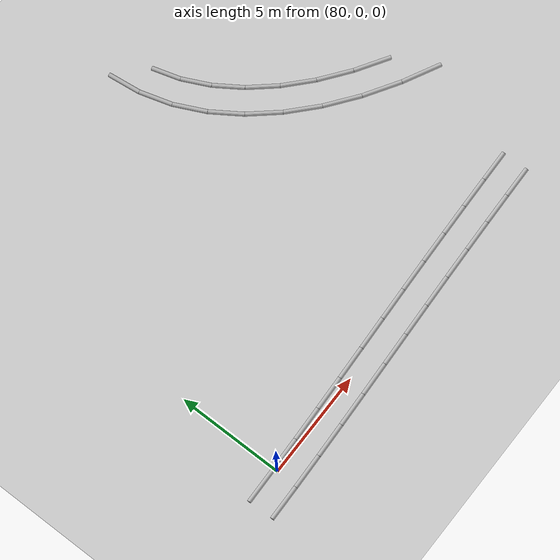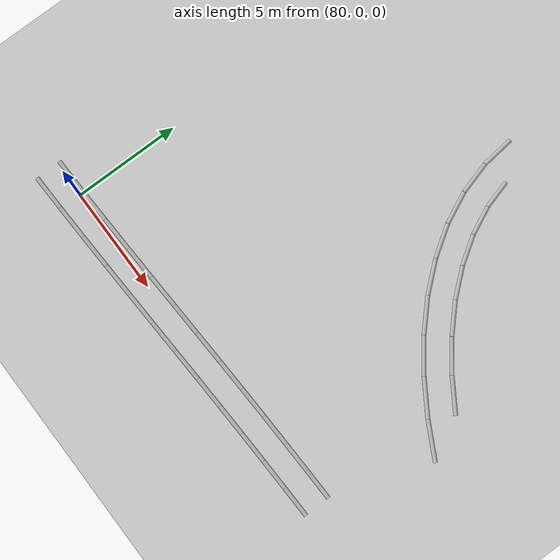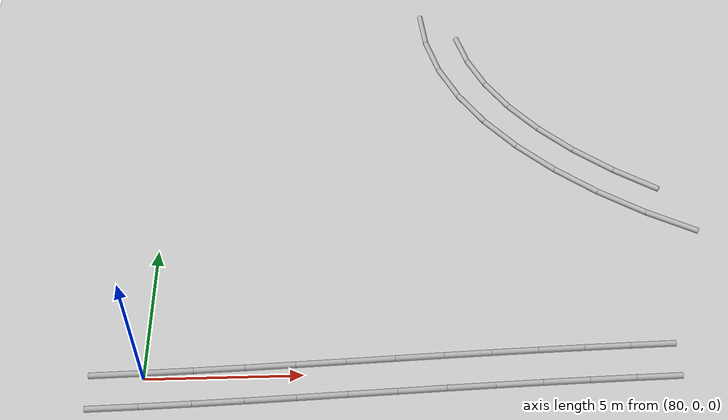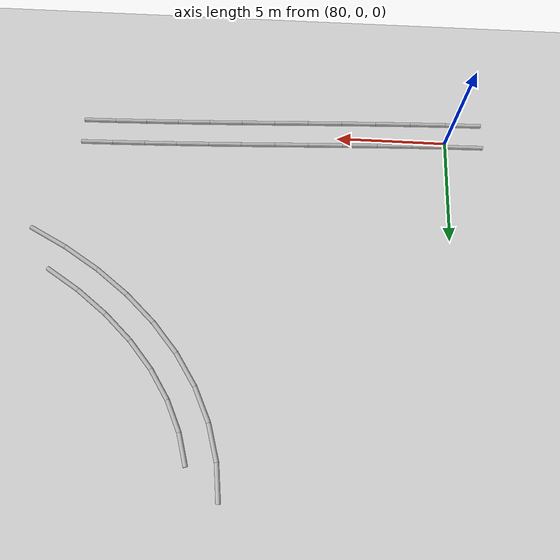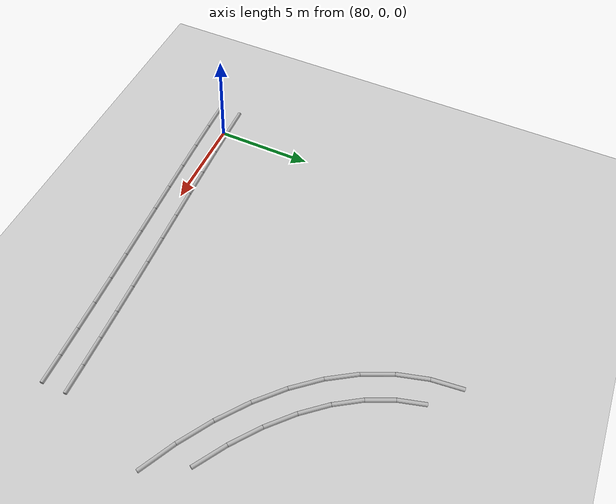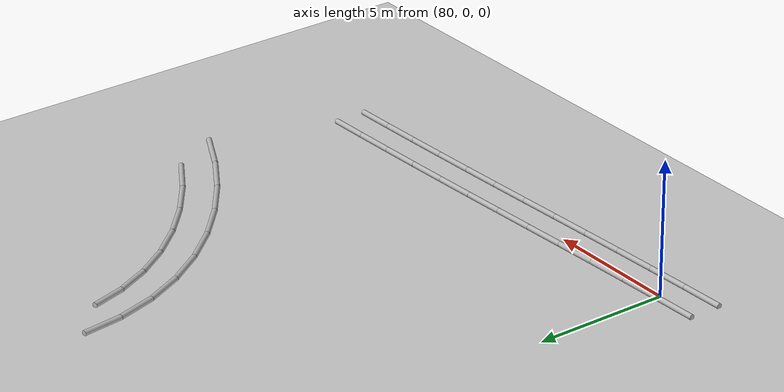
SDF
<sdf version="1.6">
 <world name="default">
  <model name="ground_plane">
   <static>true</static>
   <link name="link">
    <collision name="collision">
     <geometry><plane><normal>0 0 1</normal><size>5000 5000</size></plane></geometry>
     <surface>
      <friction>
       <ode><mu>50</mu></ode>
       <bullet><friction>1</friction><rolling_friction>0.1</rolling_friction></bullet>
      </friction>
     </surface>
    </collision>
    <visual name="visual">
     <geometry><plane><normal>0 0 1</normal><size>5000 5000</size></plane></geometry>
     <material>
      <ambient>0.8 0.8 0.8 1</ambient>
      <diffuse>0.8 0.8 0.8 1</diffuse>
      <specular>0.8 0.8 0.8 1</specular>
     </material>
    </visual>
    <inertial>
     <mass>1</mass>
     <inertia><ixx>1</ixx><ixy>0</ixy><ixz>0</ixz><iyy>1</iyy><iyz>0</iyz><izz>1</izz></inertia>
    </inertial>
   </link>
  </model>
  <model name="line_model">
   <static>true</static>
   <link name="cylinder_(78.28234827015892, -1.0534792192528566)_(79.93636426591131, -1.0135944991903156)">
    <pose>79.10935626803511 -1.0335368592215861 0.05 0 1.5707963267948966 0.02410919371888497</pose>
    <visual name="visual">
     <geometry><cylinder><radius>0.1</radius><length>1.654496813263547</length></cylinder></geometry>
    </visual>
    <collision name="collision">
     <geometry><cylinder><radius>0.1</radius><length>1.654496813263547</length></cylinder></geometry>
    </collision>
   </link>
   <link name="cylinder_(79.93636426591131, -1.0135944991903156)_(81.57447034919313, -0.9614518591887812)">
    <pose>80.75541730755222 -0.9875231791895485 0.05 0 1.5707963267948966 0.031820308005831535</pose>
    <visual name="visual">
     <geometry><cylinder><radius>0.1</radius><length>1.6389357507209534</length></cylinder></geometry>
    </visual>
    <collision name="collision">
     <geometry><cylinder><radius>0.1</radius><length>1.6389357507209534</length></cylinder></geometry>
    </collision>
   </link>
   <link name="cylinder_(81.57447034919313, -0.9614518591887812)_(83.19522868099027, -0.9000821338789796)">
    <pose>82.3848495150917 -0.9307669965338804 0.05 0 1.5707963267948966 0.037846741123918254</pose>
    <visual name="visual">
     <geometry><cylinder><radius>0.1</radius><length>1.6219197924911175</length></cylinder></geometry>
    </visual>
    <collision name="collision">
     <geometry><cylinder><radius>0.1</radius><length>1.6219197924911175</length></cylinder></geometry>
    </collision>
   </link>
   <link name="cylinder_(83.19522868099027, -0.9000821338789796)_(84.79719540522802, -0.832511633638654)">
    <pose>83.99621204310915 -0.8662968837588167 0.05 0 1.5707963267948966 0.04215472752480525</pose>
    <visual name="visual">
     <geometry><cylinder><radius>0.1</radius><length>1.6033911431923813</length></cylinder></geometry>
    </visual>
    <collision name="collision">
     <geometry><cylinder><radius>0.1</radius><length>1.6033911431923813</length></cylinder></geometry>
    </collision>
   </link>
   <link name="cylinder_(84.79719540522802, -0.832511633638654)_(86.37891967201405, -0.7617619397766893)">
    <pose>85.58805753862103 -0.7971367867076716 0.05 0 1.5707963267948966 0.044699678905558926</pose>
    <visual name="visual">
     <geometry><cylinder><radius>0.1</radius><length>1.583305774423043</length></cylinder></geometry>
    </visual>
    <collision name="collision">
     <geometry><cylinder><radius>0.1</radius><length>1.583305774423043</length></cylinder></geometry>
    </collision>
   </link>
   <link name="cylinder_(86.37891967201405, -0.7617619397766893)_(87.93894262275901, -0.6908495311971052)">
    <pose>87.15893114738654 -0.7263057354868973 0.05 0 1.5707963267948966 0.04542473437777758</pose>
    <visual name="visual">
     <geometry><cylinder><radius>0.1</radius><length>1.5616338164056216</length></cylinder></geometry>
    </visual>
    <collision name="collision">
     <geometry><cylinder><radius>0.1</radius><length>1.5616338164056216</length></cylinder></geometry>
    </collision>
   </link>
   <link name="cylinder_(87.93894262275901, -0.6908495311971052)_(89.47579632394103, -0.6227851966942298)">
    <pose>88.70736947335001 -0.6568173639456676 0.05 0 1.5707963267948966 0.04425918060360364</pose>
    <visual name="visual">
     <geometry><cylinder><radius>0.1</radius><length>1.538360182944217</length></cylinder></geometry>
    </visual>
    <collision name="collision">
     <geometry><cylinder><radius>0.1</radius><length>1.538360182944217</length></cylinder></geometry>
    </collision>
   </link>
   <link name="cylinder_(89.47579632394103, -0.6227851966942298)_(90.98851884593037, -0.5604276135097989)">
    <pose>90.23215758493569 -0.5916064051020143 0.05 0 1.5707963267948966 0.041198764248002354</pose>
    <visual name="visual">
     <geometry><cylinder><radius>0.1</radius><length>1.5140072313943584</length></cylinder></geometry>
    </visual>
    <collision name="collision">
     <geometry><cylinder><radius>0.1</radius><length>1.5140072313943584</length></cylinder></geometry>
    </collision>
   </link>
   <link name="cylinder_(90.98851884593037, -0.5604276135097989)_(92.48041448687374, -0.5048527057496504)">
    <pose>91.73446666640206 -0.5326401596297246 0.05 0 1.5707963267948966 0.03723398701888854</pose>
    <visual name="visual">
     <geometry><cylinder><radius>0.1</radius><length>1.4929303981895388</length></cylinder></geometry>
    </visual>
    <collision name="collision">
     <geometry><cylinder><radius>0.1</radius><length>1.4929303981895388</length></cylinder></geometry>
    </collision>
   </link>
   <link name="cylinder_(92.48041448687374, -0.5048527057496504)_(93.95659136947582, -0.4559489454234866)">
    <pose>93.21850292817479 -0.4804008255865685 0.05 0 1.5707963267948966 0.0331165471547415</pose>
    <visual name="visual">
     <geometry><cylinder><radius>0.1</radius><length>1.4769867184585044</length></cylinder></geometry>
    </visual>
    <collision name="collision">
     <geometry><cylinder><radius>0.1</radius><length>1.4769867184585044</length></cylinder></geometry>
    </collision>
   </link>
   <link name="cylinder_(93.95659136947582, -0.4559489454234866)_(95.42213786742384, -0.4135835402188134)">
    <pose>94.68936461844983 -0.43476624282114995 0.05 0 1.5707963267948966 0.028899533599168886</pose>
    <visual name="visual">
     <geometry><cylinder><radius>0.1</radius><length>1.4661587107833445</length></cylinder></geometry>
    </visual>
    <collision name="collision">
     <geometry><cylinder><radius>0.1</radius><length>1.4661587107833445</length></cylinder></geometry>
    </collision>
   </link>
   <link name="cylinder_(95.42213786742384, -0.4135835402188134)_(96.88214407625512, -0.37762405332056653)">
    <pose>96.15214097183949 -0.39560379676968993 0.05 0 1.5707963267948966 0.024624702322558624</pose>
    <visual name="visual">
     <geometry><cylinder><radius>0.1</radius><length>1.4604489770354372</length></cylinder></geometry>
    </visual>
    <collision name="collision">
     <geometry><cylinder><radius>0.1</radius><length>1.4604489770354372</length></cylinder></geometry>
    </collision>
   </link>
   <link name="cylinder_(97.30680030457754, 7.2666266332350276)_(95.8423356423353, 8.187546430091905)">
    <pose>96.57456797345642 7.727086531663466 0.05 0 1.5707963267948966 2.580233897279629</pose>
    <visual name="visual">
     <geometry><cylinder><radius>0.1</radius><length>1.7299566524046714</length></cylinder></geometry>
    </visual>
    <collision name="collision">
     <geometry><cylinder><radius>0.1</radius><length>1.7299566524046714</length></cylinder></geometry>
    </collision>
   </link>
   <link name="cylinder_(95.8423356423353, 8.187546430091905)_(94.51741767758332, 9.194360811782985)">
    <pose>95.17987665995932 8.690953620937446 0.05 0 1.5707963267948966 2.491781183032167</pose>
    <visual name="visual">
     <geometry><cylinder><radius>0.1</radius><length>1.66405613261768</length></cylinder></geometry>
    </visual>
    <collision name="collision">
     <geometry><cylinder><radius>0.1</radius><length>1.66405613261768</length></cylinder></geometry>
    </collision>
   </link>
   <link name="cylinder_(94.51741767758332, 9.194360811782985)_(93.35001215523648, 10.27686705468125)">
    <pose>93.93371491640991 9.735613933232118 0.05 0 1.5707963267948966 2.3939110883942476</pose>
    <visual name="visual">
     <geometry><cylinder><radius>0.1</radius><length>1.5920601180607525</length></cylinder></geometry>
    </visual>
    <collision name="collision">
     <geometry><cylinder><radius>0.1</radius><length>1.5920601180607525</length></cylinder></geometry>
    </collision>
   </link>
   <link name="cylinder_(93.35001215523648, 10.27686705468125)_(92.35736868801402, 11.424447684023615)">
    <pose>92.85369042162526 10.850657369352433 0.05 0 1.5707963267948966 2.2839275960705625</pose>
    <visual name="visual">
     <geometry><cylinder><radius>0.1</radius><length>1.5173273720134535</length></cylinder></geometry>
    </visual>
    <collision name="collision">
     <geometry><cylinder><radius>0.1</radius><length>1.5173273720134535</length></cylinder></geometry>
    </collision>
   </link>
   <link name="cylinder_(92.35736868801402, 11.424447684023615)_(91.55556421833369, 12.626362748936375)">
    <pose>91.95646645317385 12.025405216479996 0.05 0 1.5707963267948966 2.1591028603740914</pose>
    <visual name="visual">
     <geometry><cylinder><radius>0.1</radius><length>1.4448149469269773</length></cylinder></geometry>
    </visual>
    <collision name="collision">
     <geometry><cylinder><radius>0.1</radius><length>1.4448149469269773</length></cylinder></geometry>
    </collision>
   </link>
   <link name="cylinder_(91.55556421833369, 12.626362748936375)_(90.95905312047474, 13.872522750836165)">
    <pose>91.25730866940421 13.24944274988627 0.05 0 1.5707963267948966 2.017242423860494</pose>
    <visual name="visual">
     <geometry><cylinder><radius>0.1</radius><length>1.3815716558339548</length></cylinder></geometry>
    </visual>
    <collision name="collision">
     <geometry><cylinder><radius>0.1</radius><length>1.3815716558339548</length></cylinder></geometry>
    </collision>
   </link>
   <link name="cylinder_(90.95905312047474, 13.872522750836165)_(90.58067326967499, 15.154883601614406)">
    <pose>90.76986319507486 14.513703176225285 0.05 0 1.5707963267948966 1.857719504755686</pose>
    <visual name="visual">
     <geometry><cylinder><radius>0.1</radius><length>1.3370193203914196</length></cylinder></geometry>
    </visual>
    <collision name="collision">
     <geometry><cylinder><radius>0.1</radius><length>1.3370193203914196</length></cylinder></geometry>
    </collision>
   </link>
   <link name="cylinder_(78.25870350308121, 0.14628781021154805)_(79.90246962428088, 0.18592671915838235)">
    <pose>79.08058656368104 0.1661072646849652 0.05 0 1.5707963267948966 0.02411001634159611</pose>
    <visual name="visual">
     <geometry><cylinder><radius>0.1</radius><length>1.6442439917196965</length></cylinder></geometry>
    </visual>
    <collision name="collision">
     <geometry><cylinder><radius>0.1</radius><length>1.6442439917196965</length></cylinder></geometry>
    </collision>
   </link>
   <link name="cylinder_(79.90246962428088, 0.18592671915838235)_(81.53233257595183, 0.23780808263628642)">
    <pose>80.71740110011635 0.21186740089733438 0.05 0 1.5707963267948966 0.031820988985259764</pose>
    <visual name="visual">
     <geometry><cylinder><radius>0.1</radius><length>1.6306884794790966</length></cylinder></geometry>
    </visual>
    <collision name="collision">
     <geometry><cylinder><radius>0.1</radius><length>1.6306884794790966</length></cylinder></geometry>
    </collision>
   </link>
   <link name="cylinder_(81.53233257595183, 0.23780808263628642)_(83.14688823232282, 0.2989438045488052)">
    <pose>82.33961040413732 0.2683759435925458 0.05 0 1.5707963267948966 0.037847272893150645</pose>
    <visual name="visual">
     <geometry><cylinder><radius>0.1</radius><length>1.615712704664212</length></cylinder></geometry>
    </visual>
    <collision name="collision">
     <geometry><cylinder><radius>0.1</radius><length>1.615712704664212</length></cylinder></geometry>
    </collision>
   </link>
   <link name="cylinder_(83.14688823232282, 0.2989438045488052)_(84.74473848468304, 0.36634126454649757)">
    <pose>83.94581335850293 0.33264253454765136 0.05 0 1.5707963267948966 0.04215509697035323</pose>
    <visual name="visual">
     <geometry><cylinder><radius>0.1</radius><length>1.5992710359978857</length></cylinder></geometry>
    </visual>
    <collision name="collision">
     <geometry><cylinder><radius>0.1</radius><length>1.5992710359978857</length></cylinder></geometry>
    </collision>
   </link>
   <link name="cylinder_(84.74473848468304, 0.36634126454649757)_(86.32449221813948, 0.4370031132110645)">
    <pose>85.53461535141126 0.40167218887878103 0.05 0 1.5707963267948966 0.044699865726261806</pose>
    <visual name="visual">
     <geometry><cylinder><radius>0.1</radius><length>1.5813332840442784</length></cylinder></geometry>
    </visual>
    <collision name="collision">
     <geometry><cylinder><radius>0.1</radius><length>1.5813332840442784</length></cylinder></geometry>
    </collision>
   </link>
   <link name="cylinder_(86.32449221813948, 0.4370031132110645)_(87.88476632649602, 0.5079268987193426)">
    <pose>87.10462927231775 0.4724650059652036 0.05 0 1.5707963267948966 0.04542470899075743</pose>
    <visual name="visual">
     <geometry><cylinder><radius>0.1</radius><length>1.5618852315578802</length></cylinder></geometry>
    </visual>
    <collision name="collision">
     <geometry><cylinder><radius>0.1</radius><length>1.5618852315578802</length></cylinder></geometry>
    </collision>
   </link>
   <link name="cylinder_(87.88476632649602, 0.5079268987193426)_(89.42418677848913, 0.576104479138475)">
    <pose>88.65447655249258 0.5420156889289087 0.05 0 1.5707963267948966 0.044258901430856146</pose>
    <visual name="visual">
     <geometry><cylinder><radius>0.1</radius><length>1.540929430728895</length></cylinder></geometry>
    </visual>
    <collision name="collision">
     <geometry><cylinder><radius>0.1</radius><length>1.540929430728895</length></cylinder></geometry>
    </collision>
   </link>
   <link name="cylinder_(89.42418677848913, 0.576104479138475)_(90.94143683835084, 0.638648399327703)">
    <pose>90.18281180841998 0.6073764392330889 0.05 0 1.5707963267948966 0.041198568458395916</pose>
    <visual name="visual">
     <geometry><cylinder><radius>0.1</radius><length>1.5185386021115816</length></cylinder></geometry>
    </visual>
    <collision name="collision">
     <geometry><cylinder><radius>0.1</radius><length>1.5185386021115816</length></cylinder></geometry>
    </collision>
   </link>
   <link name="cylinder_(90.94143683835084, 0.638648399327703)_(92.43819340699251, 0.6944043060762812)">
    <pose>91.68981512267167 0.6665263527019921 0.05 0 1.5707963267948966 0.03723393603438703</pose>
    <visual name="visual">
     <geometry><cylinder><radius>0.1</radius><length>1.4977946945123515</length></cylinder></geometry>
    </visual>
    <collision name="collision">
     <geometry><cylinder><radius>0.1</radius><length>1.4977946945123515</length></cylinder></geometry>
    </collision>
   </link>
   <link name="cylinder_(92.43819340699251, 0.6944043060762812)_(93.91937494592234, 0.7434738064942386)">
    <pose>93.17878417645743 0.7189390562852599 0.05 0 1.5707963267948966 0.03311650840372579</pose>
    <visual name="visual">
     <geometry><cylinder><radius>0.1</radius><length>1.4819941184558771</length></cylinder></geometry>
    </visual>
    <collision name="collision">
     <geometry><cylinder><radius>0.1</radius><length>1.4819941184558771</length></cylinder></geometry>
    </collision>
   </link>
   <link name="cylinder_(93.91937494592234, 0.7434738064942386)_(95.39002160268429, 0.7859866101013664)">
    <pose>94.65469827430331 0.7647302082978025 0.05 0 1.5707963267948966 0.028899509918213523</pose>
    <visual name="visual">
     <geometry><cylinder><radius>0.1</radius><length>1.4712609991145753</length></cylinder></geometry>
    </visual>
    <collision name="collision">
     <geometry><cylinder><radius>0.1</radius><length>1.4712609991145753</length></cylinder></geometry>
    </collision>
   </link>
   <link name="cylinder_(95.39002160268429, 0.7859866101013664)_(96.85517180297238, 0.8220727819148863)">
    <pose>96.12259670282833 0.8040296960081263 0.05 0 1.5707963267948966 0.02462469553394176</pose>
    <visual name="visual">
     <geometry><cylinder><radius>0.1</radius><length>1.4655945282377367</length></cylinder></geometry>
    </visual>
    <collision name="collision">
     <geometry><cylinder><radius>0.1</radius><length>1.4655945282377367</length></cylinder></geometry>
    </collision>
   </link>
   <link name="cylinder_(98.38012915295153, 5.356206896475759)_(96.71068078461187, 6.225165391557781)">
    <pose>97.5454049687817 5.79068614401677 0.05 0 1.5707963267948966 2.6616748603024676</pose>
    <visual name="visual">
     <geometry><cylinder><radius>0.1</radius><length>1.8820591703576064</length></cylinder></geometry>
    </visual>
    <collision name="collision">
     <geometry><cylinder><radius>0.1</radius><length>1.8820591703576064</length></cylinder></geometry>
    </collision>
   </link>
   <link name="cylinder_(96.71068078461187, 6.225165391557781)_(95.16030043624292, 7.200212657930467)">
    <pose>95.9354906104274 6.712689024744124 0.05 0 1.5707963267948966 2.5801877196073932</pose>
    <visual name="visual">
     <geometry><cylinder><radius>0.1</radius><length>1.8315011319323458</length></cylinder></geometry>
    </visual>
    <collision name="collision">
     <geometry><cylinder><radius>0.1</radius><length>1.8315011319323458</length></cylinder></geometry>
    </collision>
   </link>
   <link name="cylinder_(95.16030043624292, 7.200212657930467)_(93.74681952028018, 8.274481210986783)">
    <pose>94.45355997826155 7.737346934458625 0.05 0 1.5707963267948966 2.4917118644020833</pose>
    <visual name="visual">
     <geometry><cylinder><radius>0.1</radius><length>1.775381993790792</length></cylinder></geometry>
    </visual>
    <collision name="collision">
     <geometry><cylinder><radius>0.1</radius><length>1.775381993790792</length></cylinder></geometry>
    </collision>
   </link>
   <link name="cylinder_(93.74681952028018, 8.274481210986783)_(92.48846349460169, 9.441562376519803)">
    <pose>93.11764150744094 8.858021793753293 0.05 0 1.5707963267948966 2.3938090734356305</pose>
    <visual name="visual">
     <geometry><cylinder><radius>0.1</radius><length>1.716257071159006</length></cylinder></geometry>
    </visual>
    <collision name="collision">
     <geometry><cylinder><radius>0.1</radius><length>1.716257071159006</length></cylinder></geometry>
    </collision>
   </link>
   <link name="cylinder_(92.48846349460169, 9.441562376519803)_(91.40417394928075, 10.695462231458764)">
    <pose>91.94631872194122 10.068512303989284 0.05 0 1.5707963267948966 2.2837821557796816</pose>
    <visual name="visual">
     <geometry><cylinder><radius>0.1</radius><length>1.6576937788108643</length></cylinder></geometry>
    </visual>
    <collision name="collision">
     <geometry><cylinder><radius>0.1</radius><length>1.6576937788108643</length></cylinder></geometry>
    </collision>
   </link>
   <link name="cylinder_(91.40417394928075, 10.695462231458764)_(90.51406514469245, 12.030309328843476)">
    <pose>90.9591195469866 11.362885780151121 0.05 0 1.5707963267948966 2.1589082208079313</pose>
    <visual name="visual">
     <geometry><cylinder><radius>0.1</radius><length>1.6044034584237197</length></cylinder></geometry>
    </visual>
    <collision name="collision">
     <geometry><cylinder><radius>0.1</radius><length>1.6044034584237197</length></cylinder></geometry>
    </collision>
   </link>
   <link name="cylinder_(90.51406514469245, 12.030309328843476)_(89.83987390935017, 13.43958176942343)">
    <pose>90.17696952702131 12.734945549133453 0.05 0 1.5707963267948966 2.0170123863114195</pose>
    <visual name="visual">
     <geometry><cylinder><radius>0.1</radius><length>1.5622364205172428</length></cylinder></geometry>
    </visual>
    <collision name="collision">
     <geometry><cylinder><radius>0.1</radius><length>1.5622364205172428</length></cylinder></geometry>
    </collision>
   </link>
   <link name="cylinder_(89.83987390935017, 13.43958176942343)_(89.40495317210608, 14.914712304052571)">
    <pose>89.62241354072813 14.177147036738 0.05 0 1.5707963267948966 1.8575082695559466</pose>
    <visual name="visual">
     <geometry><cylinder><radius>0.1</radius><length>1.5379096663589202</length></cylinder></geometry>
    </visual>
    <collision name="collision">
     <geometry><cylinder><radius>0.1</radius><length>1.5379096663589202</length></cylinder></geometry>
    </collision>
   </link>
   <link name="cylinder_(89.40495317210608, 14.914712304052571)_(89.21968764253754, 16.428805177984238)">
    <pose>89.3123204073218 15.671758741018404 0.05 0 1.5707963267948966 1.6925518301052627</pose>
    <visual name="visual">
     <geometry><cylinder><radius>0.1</radius><length>1.5253853766628827</length></cylinder></geometry>
    </visual>
    <collision name="collision">
     <geometry><cylinder><radius>0.1</radius><length>1.5253853766628827</length></cylinder></geometry>
    </collision>
   </link>
  </model>
 </world>
</sdf>
